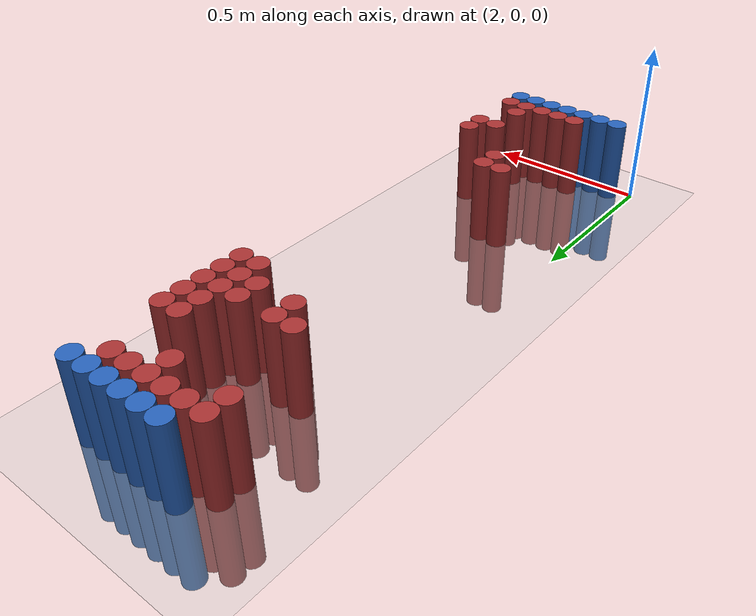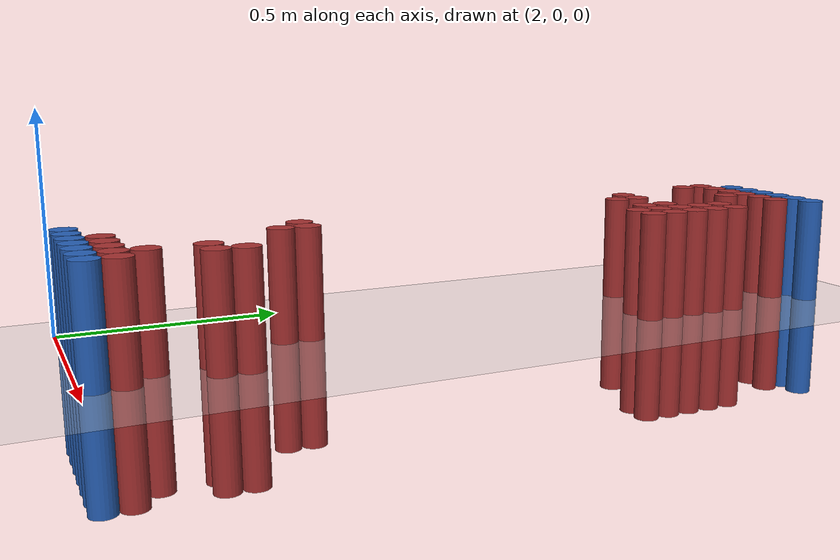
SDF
<sdf version="1.6">
 <world name="default">
  <model name="ground_plane">
   <static>1</static>
   <link name="link">
    <collision name="collision">
     <geometry><plane><normal>0 0 1</normal><size>100 100</size></plane></geometry>
     <surface><friction><ode><mu>100</mu><mu2>50</mu2></ode></friction></surface>
    </collision>
    <visual name="visual">
     <cast_shadows>0</cast_shadows>
     <geometry><plane><normal>0 0 1</normal><size>100 100</size></plane></geometry>
     <material>
      <script><uri>file://media/materials/scripts/gazebo.material</uri><name>Gazebo/Grey</name></script>
     </material>
    </visual>
   </link>
  </model>
  <model name="unit_cylinder_96">
   <static>1</static>
   <pose>2.130000 1.770000 0.000000 0.000000 0.000000 0.000000</pose>
   <link name="link">
    <inertial>
     <mass>1</mass>
     <inertia><ixx>0.145833</ixx><ixy>0</ixy><ixz>0</ixz><iyy>0.145833</iyy><iyz>0</iyz><izz>0.125</izz></inertia>
    </inertial>
    <collision name="collision">
     <geometry><cylinder><radius>0.030000</radius><length>0.5</length></cylinder></geometry>
    </collision>
    <visual name="visual">
     <geometry><cylinder><radius>0.030000</radius><length>0.5</length></cylinder></geometry>
     <material>
      <ambient>0.152000 0.379000 0.720000 1</ambient>
      <diffuse>0.152000 0.379000 0.720000 1</diffuse>
     </material>
     <material>
      <script><name>Gazebo/Grey</name><uri>file://media/materials/scripts/gazebo.material</uri></script>
     </material>
    </visual>
   </link>
  </model>
  <model name="unit_cylinder_97">
   <static>1</static>
   <pose>2.190000 1.770000 0.000000 0.000000 0.000000 0.000000</pose>
   <link name="link">
    <inertial>
     <mass>1</mass>
     <inertia><ixx>0.145833</ixx><ixy>0</ixy><ixz>0</ixz><iyy>0.145833</iyy><iyz>0</iyz><izz>0.125</izz></inertia>
    </inertial>
    <collision name="collision">
     <geometry><cylinder><radius>0.030000</radius><length>0.5</length></cylinder></geometry>
    </collision>
    <visual name="visual">
     <geometry><cylinder><radius>0.030000</radius><length>0.5</length></cylinder></geometry>
     <material>
      <ambient>0.152000 0.379000 0.720000 1</ambient>
      <diffuse>0.152000 0.379000 0.720000 1</diffuse>
     </material>
     <material>
      <script><name>Gazebo/Grey</name><uri>file://media/materials/scripts/gazebo.material</uri></script>
     </material>
    </visual>
   </link>
  </model>
  <model name="unit_cylinder_98">
   <static>1</static>
   <pose>2.250000 1.770000 0.000000 0.000000 0.000000 0.000000</pose>
   <link name="link">
    <inertial>
     <mass>1</mass>
     <inertia><ixx>0.145833</ixx><ixy>0</ixy><ixz>0</ixz><iyy>0.145833</iyy><iyz>0</iyz><izz>0.125</izz></inertia>
    </inertial>
    <collision name="collision">
     <geometry><cylinder><radius>0.030000</radius><length>0.5</length></cylinder></geometry>
    </collision>
    <visual name="visual">
     <geometry><cylinder><radius>0.030000</radius><length>0.5</length></cylinder></geometry>
     <material>
      <ambient>0.152000 0.379000 0.720000 1</ambient>
      <diffuse>0.152000 0.379000 0.720000 1</diffuse>
     </material>
     <material>
      <script><name>Gazebo/Grey</name><uri>file://media/materials/scripts/gazebo.material</uri></script>
     </material>
    </visual>
   </link>
  </model>
  <model name="unit_cylinder_99">
   <static>1</static>
   <pose>2.310000 1.770000 0.000000 0.000000 0.000000 0.000000</pose>
   <link name="link">
    <inertial>
     <mass>1</mass>
     <inertia><ixx>0.145833</ixx><ixy>0</ixy><ixz>0</ixz><iyy>0.145833</iyy><iyz>0</iyz><izz>0.125</izz></inertia>
    </inertial>
    <collision name="collision">
     <geometry><cylinder><radius>0.030000</radius><length>0.5</length></cylinder></geometry>
    </collision>
    <visual name="visual">
     <geometry><cylinder><radius>0.030000</radius><length>0.5</length></cylinder></geometry>
     <material>
      <ambient>0.152000 0.379000 0.720000 1</ambient>
      <diffuse>0.152000 0.379000 0.720000 1</diffuse>
     </material>
     <material>
      <script><name>Gazebo/Grey</name><uri>file://media/materials/scripts/gazebo.material</uri></script>
     </material>
    </visual>
   </link>
  </model>
  <model name="unit_cylinder_100">
   <static>1</static>
   <pose>2.370000 1.770000 0.000000 0.000000 0.000000 0.000000</pose>
   <link name="link">
    <inertial>
     <mass>1</mass>
     <inertia><ixx>0.145833</ixx><ixy>0</ixy><ixz>0</ixz><iyy>0.145833</iyy><iyz>0</iyz><izz>0.125</izz></inertia>
    </inertial>
    <collision name="collision">
     <geometry><cylinder><radius>0.030000</radius><length>0.5</length></cylinder></geometry>
    </collision>
    <visual name="visual">
     <geometry><cylinder><radius>0.030000</radius><length>0.5</length></cylinder></geometry>
     <material>
      <ambient>0.152000 0.379000 0.720000 1</ambient>
      <diffuse>0.152000 0.379000 0.720000 1</diffuse>
     </material>
     <material>
      <script><name>Gazebo/Grey</name><uri>file://media/materials/scripts/gazebo.material</uri></script>
     </material>
    </visual>
   </link>
  </model>
  <model name="unit_cylinder_101">
   <static>1</static>
   <pose>2.430000 1.770000 0.000000 0.000000 0.000000 0.000000</pose>
   <link name="link">
    <inertial>
     <mass>1</mass>
     <inertia><ixx>0.145833</ixx><ixy>0</ixy><ixz>0</ixz><iyy>0.145833</iyy><iyz>0</iyz><izz>0.125</izz></inertia>
    </inertial>
    <collision name="collision">
     <geometry><cylinder><radius>0.030000</radius><length>0.5</length></cylinder></geometry>
    </collision>
    <visual name="visual">
     <geometry><cylinder><radius>0.030000</radius><length>0.5</length></cylinder></geometry>
     <material>
      <ambient>0.152000 0.379000 0.720000 1</ambient>
      <diffuse>0.152000 0.379000 0.720000 1</diffuse>
     </material>
     <material>
      <script><name>Gazebo/Grey</name><uri>file://media/materials/scripts/gazebo.material</uri></script>
     </material>
    </visual>
   </link>
  </model>
  <model name="unit_cylinder_125">
   <static>1</static>
   <pose>2.070000 1.710000 0.000000 0.000000 0.000000 0.000000</pose>
   <link name="link">
    <inertial>
     <mass>1</mass>
     <inertia><ixx>0.145833</ixx><ixy>0</ixy><ixz>0</ixz><iyy>0.145833</iyy><iyz>0</iyz><izz>0.125</izz></inertia>
    </inertial>
    <collision name="collision">
     <geometry><cylinder><radius>0.030000</radius><length>0.5</length></cylinder></geometry>
    </collision>
    <visual name="visual">
     <geometry><cylinder><radius>0.030000</radius><length>0.5</length></cylinder></geometry>
     <material>
      <ambient>0.648000 0.192000 0.192000 1</ambient>
      <diffuse>0.648000 0.192000 0.192000 1</diffuse>
     </material>
     <material>
      <script><name>Gazebo/Grey</name><uri>file://media/materials/scripts/gazebo.material</uri></script>
     </material>
    </visual>
   </link>
  </model>
  <model name="unit_cylinder_126">
   <static>1</static>
   <pose>2.130000 1.710000 0.000000 0.000000 0.000000 0.000000</pose>
   <link name="link">
    <inertial>
     <mass>1</mass>
     <inertia><ixx>0.145833</ixx><ixy>0</ixy><ixz>0</ixz><iyy>0.145833</iyy><iyz>0</iyz><izz>0.125</izz></inertia>
    </inertial>
    <collision name="collision">
     <geometry><cylinder><radius>0.030000</radius><length>0.5</length></cylinder></geometry>
    </collision>
    <visual name="visual">
     <geometry><cylinder><radius>0.030000</radius><length>0.5</length></cylinder></geometry>
     <material>
      <ambient>0.648000 0.192000 0.192000 1</ambient>
      <diffuse>0.648000 0.192000 0.192000 1</diffuse>
     </material>
     <material>
      <script><name>Gazebo/Grey</name><uri>file://media/materials/scripts/gazebo.material</uri></script>
     </material>
    </visual>
   </link>
  </model>
  <model name="unit_cylinder_127">
   <static>1</static>
   <pose>2.190000 1.710000 0.000000 0.000000 0.000000 0.000000</pose>
   <link name="link">
    <inertial>
     <mass>1</mass>
     <inertia><ixx>0.145833</ixx><ixy>0</ixy><ixz>0</ixz><iyy>0.145833</iyy><iyz>0</iyz><izz>0.125</izz></inertia>
    </inertial>
    <collision name="collision">
     <geometry><cylinder><radius>0.030000</radius><length>0.5</length></cylinder></geometry>
    </collision>
    <visual name="visual">
     <geometry><cylinder><radius>0.030000</radius><length>0.5</length></cylinder></geometry>
     <material>
      <ambient>0.648000 0.192000 0.192000 1</ambient>
      <diffuse>0.648000 0.192000 0.192000 1</diffuse>
     </material>
     <material>
      <script><name>Gazebo/Grey</name><uri>file://media/materials/scripts/gazebo.material</uri></script>
     </material>
    </visual>
   </link>
  </model>
  <model name="unit_cylinder_128">
   <static>1</static>
   <pose>2.250000 1.710000 0.000000 0.000000 0.000000 0.000000</pose>
   <link name="link">
    <inertial>
     <mass>1</mass>
     <inertia><ixx>0.145833</ixx><ixy>0</ixy><ixz>0</ixz><iyy>0.145833</iyy><iyz>0</iyz><izz>0.125</izz></inertia>
    </inertial>
    <collision name="collision">
     <geometry><cylinder><radius>0.030000</radius><length>0.5</length></cylinder></geometry>
    </collision>
    <visual name="visual">
     <geometry><cylinder><radius>0.030000</radius><length>0.5</length></cylinder></geometry>
     <material>
      <ambient>0.648000 0.192000 0.192000 1</ambient>
      <diffuse>0.648000 0.192000 0.192000 1</diffuse>
     </material>
     <material>
      <script><name>Gazebo/Grey</name><uri>file://media/materials/scripts/gazebo.material</uri></script>
     </material>
    </visual>
   </link>
  </model>
  <model name="unit_cylinder_129">
   <static>1</static>
   <pose>2.310000 1.710000 0.000000 0.000000 0.000000 0.000000</pose>
   <link name="link">
    <inertial>
     <mass>1</mass>
     <inertia><ixx>0.145833</ixx><ixy>0</ixy><ixz>0</ixz><iyy>0.145833</iyy><iyz>0</iyz><izz>0.125</izz></inertia>
    </inertial>
    <collision name="collision">
     <geometry><cylinder><radius>0.030000</radius><length>0.5</length></cylinder></geometry>
    </collision>
    <visual name="visual">
     <geometry><cylinder><radius>0.030000</radius><length>0.5</length></cylinder></geometry>
     <material>
      <ambient>0.648000 0.192000 0.192000 1</ambient>
      <diffuse>0.648000 0.192000 0.192000 1</diffuse>
     </material>
     <material>
      <script><name>Gazebo/Grey</name><uri>file://media/materials/scripts/gazebo.material</uri></script>
     </material>
    </visual>
   </link>
  </model>
  <model name="unit_cylinder_130">
   <static>1</static>
   <pose>2.370000 1.710000 0.000000 0.000000 0.000000 0.000000</pose>
   <link name="link">
    <inertial>
     <mass>1</mass>
     <inertia><ixx>0.145833</ixx><ixy>0</ixy><ixz>0</ixz><iyy>0.145833</iyy><iyz>0</iyz><izz>0.125</izz></inertia>
    </inertial>
    <collision name="collision">
     <geometry><cylinder><radius>0.030000</radius><length>0.5</length></cylinder></geometry>
    </collision>
    <visual name="visual">
     <geometry><cylinder><radius>0.030000</radius><length>0.5</length></cylinder></geometry>
     <material>
      <ambient>0.648000 0.192000 0.192000 1</ambient>
      <diffuse>0.648000 0.192000 0.192000 1</diffuse>
     </material>
     <material>
      <script><name>Gazebo/Grey</name><uri>file://media/materials/scripts/gazebo.material</uri></script>
     </material>
    </visual>
   </link>
  </model>
  <model name="unit_cylinder_143">
   <static>1</static>
   <pose>2.070000 1.650000 0.000000 0.000000 0.000000 0.000000</pose>
   <link name="link">
    <inertial>
     <mass>1</mass>
     <inertia><ixx>0.145833</ixx><ixy>0</ixy><ixz>0</ixz><iyy>0.145833</iyy><iyz>0</iyz><izz>0.125</izz></inertia>
    </inertial>
    <collision name="collision">
     <geometry><cylinder><radius>0.030000</radius><length>0.5</length></cylinder></geometry>
    </collision>
    <visual name="visual">
     <geometry><cylinder><radius>0.030000</radius><length>0.5</length></cylinder></geometry>
     <material>
      <ambient>0.648000 0.192000 0.192000 1</ambient>
      <diffuse>0.648000 0.192000 0.192000 1</diffuse>
     </material>
     <material>
      <script><name>Gazebo/Grey</name><uri>file://media/materials/scripts/gazebo.material</uri></script>
     </material>
    </visual>
   </link>
  </model>
  <model name="unit_cylinder_144">
   <static>1</static>
   <pose>2.250000 1.650000 0.000000 0.000000 0.000000 0.000000</pose>
   <link name="link">
    <inertial>
     <mass>1</mass>
     <inertia><ixx>0.145833</ixx><ixy>0</ixy><ixz>0</ixz><iyy>0.145833</iyy><iyz>0</iyz><izz>0.125</izz></inertia>
    </inertial>
    <collision name="collision">
     <geometry><cylinder><radius>0.030000</radius><length>0.5</length></cylinder></geometry>
    </collision>
    <visual name="visual">
     <geometry><cylinder><radius>0.030000</radius><length>0.5</length></cylinder></geometry>
     <material>
      <ambient>0.648000 0.192000 0.192000 1</ambient>
      <diffuse>0.648000 0.192000 0.192000 1</diffuse>
     </material>
     <material>
      <script><name>Gazebo/Grey</name><uri>file://media/materials/scripts/gazebo.material</uri></script>
     </material>
    </visual>
   </link>
  </model>
  <model name="unit_cylinder_157">
   <static>1</static>
   <pose>2.370000 1.530000 0.000000 0.000000 0.000000 0.000000</pose>
   <link name="link">
    <inertial>
     <mass>1</mass>
     <inertia><ixx>0.145833</ixx><ixy>0</ixy><ixz>0</ixz><iyy>0.145833</iyy><iyz>0</iyz><izz>0.125</izz></inertia>
    </inertial>
    <collision name="collision">
     <geometry><cylinder><radius>0.030000</radius><length>0.5</length></cylinder></geometry>
    </collision>
    <visual name="visual">
     <geometry><cylinder><radius>0.030000</radius><length>0.5</length></cylinder></geometry>
     <material>
      <ambient>0.648000 0.192000 0.192000 1</ambient>
      <diffuse>0.648000 0.192000 0.192000 1</diffuse>
     </material>
     <material>
      <script><name>Gazebo/Grey</name><uri>file://media/materials/scripts/gazebo.material</uri></script>
     </material>
    </visual>
   </link>
  </model>
  <model name="unit_cylinder_158">
   <static>1</static>
   <pose>2.430000 1.530000 0.000000 0.000000 0.000000 0.000000</pose>
   <link name="link">
    <inertial>
     <mass>1</mass>
     <inertia><ixx>0.145833</ixx><ixy>0</ixy><ixz>0</ixz><iyy>0.145833</iyy><iyz>0</iyz><izz>0.125</izz></inertia>
    </inertial>
    <collision name="collision">
     <geometry><cylinder><radius>0.030000</radius><length>0.5</length></cylinder></geometry>
    </collision>
    <visual name="visual">
     <geometry><cylinder><radius>0.030000</radius><length>0.5</length></cylinder></geometry>
     <material>
      <ambient>0.648000 0.192000 0.192000 1</ambient>
      <diffuse>0.648000 0.192000 0.192000 1</diffuse>
     </material>
     <material>
      <script><name>Gazebo/Grey</name><uri>file://media/materials/scripts/gazebo.material</uri></script>
     </material>
    </visual>
   </link>
  </model>
  <model name="unit_cylinder_166">
   <static>1</static>
   <pose>2.370000 1.470000 0.000000 0.000000 0.000000 0.000000</pose>
   <link name="link">
    <inertial>
     <mass>1</mass>
     <inertia><ixx>0.145833</ixx><ixy>0</ixy><ixz>0</ixz><iyy>0.145833</iyy><iyz>0</iyz><izz>0.125</izz></inertia>
    </inertial>
    <collision name="collision">
     <geometry><cylinder><radius>0.030000</radius><length>0.5</length></cylinder></geometry>
    </collision>
    <visual name="visual">
     <geometry><cylinder><radius>0.030000</radius><length>0.5</length></cylinder></geometry>
     <material>
      <ambient>0.648000 0.192000 0.192000 1</ambient>
      <diffuse>0.648000 0.192000 0.192000 1</diffuse>
     </material>
     <material>
      <script><name>Gazebo/Grey</name><uri>file://media/materials/scripts/gazebo.material</uri></script>
     </material>
    </visual>
   </link>
  </model>
  <model name="unit_cylinder_167">
   <static>1</static>
   <pose>2.430000 1.470000 0.000000 0.000000 0.000000 0.000000</pose>
   <link name="link">
    <inertial>
     <mass>1</mass>
     <inertia><ixx>0.145833</ixx><ixy>0</ixy><ixz>0</ixz><iyy>0.145833</iyy><iyz>0</iyz><izz>0.125</izz></inertia>
    </inertial>
    <collision name="collision">
     <geometry><cylinder><radius>0.030000</radius><length>0.5</length></cylinder></geometry>
    </collision>
    <visual name="visual">
     <geometry><cylinder><radius>0.030000</radius><length>0.5</length></cylinder></geometry>
     <material>
      <ambient>0.648000 0.192000 0.192000 1</ambient>
      <diffuse>0.648000 0.192000 0.192000 1</diffuse>
     </material>
     <material>
      <script><name>Gazebo/Grey</name><uri>file://media/materials/scripts/gazebo.material</uri></script>
     </material>
    </visual>
   </link>
  </model>
  <model name="unit_cylinder_174">
   <static>1</static>
   <pose>2.130000 1.410000 0.000000 0.000000 0.000000 0.000000</pose>
   <link name="link">
    <inertial>
     <mass>1</mass>
     <inertia><ixx>0.145833</ixx><ixy>0</ixy><ixz>0</ixz><iyy>0.145833</iyy><iyz>0</iyz><izz>0.125</izz></inertia>
    </inertial>
    <collision name="collision">
     <geometry><cylinder><radius>0.030000</radius><length>0.5</length></cylinder></geometry>
    </collision>
    <visual name="visual">
     <geometry><cylinder><radius>0.030000</radius><length>0.5</length></cylinder></geometry>
     <material>
      <ambient>0.648000 0.192000 0.192000 1</ambient>
      <diffuse>0.648000 0.192000 0.192000 1</diffuse>
     </material>
     <material>
      <script><name>Gazebo/Grey</name><uri>file://media/materials/scripts/gazebo.material</uri></script>
     </material>
    </visual>
   </link>
  </model>
  <model name="unit_cylinder_175">
   <static>1</static>
   <pose>2.190000 1.410000 0.000000 0.000000 0.000000 0.000000</pose>
   <link name="link">
    <inertial>
     <mass>1</mass>
     <inertia><ixx>0.145833</ixx><ixy>0</ixy><ixz>0</ixz><iyy>0.145833</iyy><iyz>0</iyz><izz>0.125</izz></inertia>
    </inertial>
    <collision name="collision">
     <geometry><cylinder><radius>0.030000</radius><length>0.5</length></cylinder></geometry>
    </collision>
    <visual name="visual">
     <geometry><cylinder><radius>0.030000</radius><length>0.5</length></cylinder></geometry>
     <material>
      <ambient>0.648000 0.192000 0.192000 1</ambient>
      <diffuse>0.648000 0.192000 0.192000 1</diffuse>
     </material>
     <material>
      <script><name>Gazebo/Grey</name><uri>file://media/materials/scripts/gazebo.material</uri></script>
     </material>
    </visual>
   </link>
  </model>
  <model name="unit_cylinder_176">
   <static>1</static>
   <pose>2.310000 1.410000 0.000000 0.000000 0.000000 0.000000</pose>
   <link name="link">
    <inertial>
     <mass>1</mass>
     <inertia><ixx>0.145833</ixx><ixy>0</ixy><ixz>0</ixz><iyy>0.145833</iyy><iyz>0</iyz><izz>0.125</izz></inertia>
    </inertial>
    <collision name="collision">
     <geometry><cylinder><radius>0.030000</radius><length>0.5</length></cylinder></geometry>
    </collision>
    <visual name="visual">
     <geometry><cylinder><radius>0.030000</radius><length>0.5</length></cylinder></geometry>
     <material>
      <ambient>0.648000 0.192000 0.192000 1</ambient>
      <diffuse>0.648000 0.192000 0.192000 1</diffuse>
     </material>
     <material>
      <script><name>Gazebo/Grey</name><uri>file://media/materials/scripts/gazebo.material</uri></script>
     </material>
    </visual>
   </link>
  </model>
  <model name="unit_cylinder_177">
   <static>1</static>
   <pose>2.370000 1.410000 0.000000 0.000000 0.000000 0.000000</pose>
   <link name="link">
    <inertial>
     <mass>1</mass>
     <inertia><ixx>0.145833</ixx><ixy>0</ixy><ixz>0</ixz><iyy>0.145833</iyy><iyz>0</iyz><izz>0.125</izz></inertia>
    </inertial>
    <collision name="collision">
     <geometry><cylinder><radius>0.030000</radius><length>0.5</length></cylinder></geometry>
    </collision>
    <visual name="visual">
     <geometry><cylinder><radius>0.030000</radius><length>0.5</length></cylinder></geometry>
     <material>
      <ambient>0.648000 0.192000 0.192000 1</ambient>
      <diffuse>0.648000 0.192000 0.192000 1</diffuse>
     </material>
     <material>
      <script><name>Gazebo/Grey</name><uri>file://media/materials/scripts/gazebo.material</uri></script>
     </material>
    </visual>
   </link>
  </model>
  <model name="unit_cylinder_178">
   <static>1</static>
   <pose>2.430000 1.410000 0.000000 0.000000 0.000000 0.000000</pose>
   <link name="link">
    <inertial>
     <mass>1</mass>
     <inertia><ixx>0.145833</ixx><ixy>0</ixy><ixz>0</ixz><iyy>0.145833</iyy><iyz>0</iyz><izz>0.125</izz></inertia>
    </inertial>
    <collision name="collision">
     <geometry><cylinder><radius>0.030000</radius><length>0.5</length></cylinder></geometry>
    </collision>
    <visual name="visual">
     <geometry><cylinder><radius>0.030000</radius><length>0.5</length></cylinder></geometry>
     <material>
      <ambient>0.648000 0.192000 0.192000 1</ambient>
      <diffuse>0.648000 0.192000 0.192000 1</diffuse>
     </material>
     <material>
      <script><name>Gazebo/Grey</name><uri>file://media/materials/scripts/gazebo.material</uri></script>
     </material>
    </visual>
   </link>
  </model>
  <model name="unit_cylinder_183">
   <static>1</static>
   <pose>2.190000 1.350000 0.000000 0.000000 0.000000 0.000000</pose>
   <link name="link">
    <inertial>
     <mass>1</mass>
     <inertia><ixx>0.145833</ixx><ixy>0</ixy><ixz>0</ixz><iyy>0.145833</iyy><iyz>0</iyz><izz>0.125</izz></inertia>
    </inertial>
    <collision name="collision">
     <geometry><cylinder><radius>0.030000</radius><length>0.5</length></cylinder></geometry>
    </collision>
    <visual name="visual">
     <geometry><cylinder><radius>0.030000</radius><length>0.5</length></cylinder></geometry>
     <material>
      <ambient>0.648000 0.192000 0.192000 1</ambient>
      <diffuse>0.648000 0.192000 0.192000 1</diffuse>
     </material>
     <material>
      <script><name>Gazebo/Grey</name><uri>file://media/materials/scripts/gazebo.material</uri></script>
     </material>
    </visual>
   </link>
  </model>
  <model name="unit_cylinder_184">
   <static>1</static>
   <pose>2.310000 1.350000 0.000000 0.000000 0.000000 0.000000</pose>
   <link name="link">
    <inertial>
     <mass>1</mass>
     <inertia><ixx>0.145833</ixx><ixy>0</ixy><ixz>0</ixz><iyy>0.145833</iyy><iyz>0</iyz><izz>0.125</izz></inertia>
    </inertial>
    <collision name="collision">
     <geometry><cylinder><radius>0.030000</radius><length>0.5</length></cylinder></geometry>
    </collision>
    <visual name="visual">
     <geometry><cylinder><radius>0.030000</radius><length>0.5</length></cylinder></geometry>
     <material>
      <ambient>0.648000 0.192000 0.192000 1</ambient>
      <diffuse>0.648000 0.192000 0.192000 1</diffuse>
     </material>
     <material>
      <script><name>Gazebo/Grey</name><uri>file://media/materials/scripts/gazebo.material</uri></script>
     </material>
    </visual>
   </link>
  </model>
  <model name="unit_cylinder_185">
   <static>1</static>
   <pose>2.370000 1.350000 0.000000 0.000000 0.000000 0.000000</pose>
   <link name="link">
    <inertial>
     <mass>1</mass>
     <inertia><ixx>0.145833</ixx><ixy>0</ixy><ixz>0</ixz><iyy>0.145833</iyy><iyz>0</iyz><izz>0.125</izz></inertia>
    </inertial>
    <collision name="collision">
     <geometry><cylinder><radius>0.030000</radius><length>0.5</length></cylinder></geometry>
    </collision>
    <visual name="visual">
     <geometry><cylinder><radius>0.030000</radius><length>0.5</length></cylinder></geometry>
     <material>
      <ambient>0.648000 0.192000 0.192000 1</ambient>
      <diffuse>0.648000 0.192000 0.192000 1</diffuse>
     </material>
     <material>
      <script><name>Gazebo/Grey</name><uri>file://media/materials/scripts/gazebo.material</uri></script>
     </material>
    </visual>
   </link>
  </model>
  <model name="unit_cylinder_186">
   <static>1</static>
   <pose>2.430000 1.350000 0.000000 0.000000 0.000000 0.000000</pose>
   <link name="link">
    <inertial>
     <mass>1</mass>
     <inertia><ixx>0.145833</ixx><ixy>0</ixy><ixz>0</ixz><iyy>0.145833</iyy><iyz>0</iyz><izz>0.125</izz></inertia>
    </inertial>
    <collision name="collision">
     <geometry><cylinder><radius>0.030000</radius><length>0.5</length></cylinder></geometry>
    </collision>
    <visual name="visual">
     <geometry><cylinder><radius>0.030000</radius><length>0.5</length></cylinder></geometry>
     <material>
      <ambient>0.648000 0.192000 0.192000 1</ambient>
      <diffuse>0.648000 0.192000 0.192000 1</diffuse>
     </material>
     <material>
      <script><name>Gazebo/Grey</name><uri>file://media/materials/scripts/gazebo.material</uri></script>
     </material>
    </visual>
   </link>
  </model>
  <model name="unit_cylinder_192">
   <static>1</static>
   <pose>2.370000 1.290000 0.000000 0.000000 0.000000 0.000000</pose>
   <link name="link">
    <inertial>
     <mass>1</mass>
     <inertia><ixx>0.145833</ixx><ixy>0</ixy><ixz>0</ixz><iyy>0.145833</iyy><iyz>0</iyz><izz>0.125</izz></inertia>
    </inertial>
    <collision name="collision">
     <geometry><cylinder><radius>0.030000</radius><length>0.5</length></cylinder></geometry>
    </collision>
    <visual name="visual">
     <geometry><cylinder><radius>0.030000</radius><length>0.5</length></cylinder></geometry>
     <material>
      <ambient>0.648000 0.192000 0.192000 1</ambient>
      <diffuse>0.648000 0.192000 0.192000 1</diffuse>
     </material>
     <material>
      <script><name>Gazebo/Grey</name><uri>file://media/materials/scripts/gazebo.material</uri></script>
     </material>
    </visual>
   </link>
  </model>
  <model name="unit_cylinder_193">
   <static>1</static>
   <pose>2.430000 1.290000 0.000000 0.000000 0.000000 0.000000</pose>
   <link name="link">
    <inertial>
     <mass>1</mass>
     <inertia><ixx>0.145833</ixx><ixy>0</ixy><ixz>0</ixz><iyy>0.145833</iyy><iyz>0</iyz><izz>0.125</izz></inertia>
    </inertial>
    <collision name="collision">
     <geometry><cylinder><radius>0.030000</radius><length>0.5</length></cylinder></geometry>
    </collision>
    <visual name="visual">
     <geometry><cylinder><radius>0.030000</radius><length>0.5</length></cylinder></geometry>
     <material>
      <ambient>0.648000 0.192000 0.192000 1</ambient>
      <diffuse>0.648000 0.192000 0.192000 1</diffuse>
     </material>
     <material>
      <script><name>Gazebo/Grey</name><uri>file://media/materials/scripts/gazebo.material</uri></script>
     </material>
    </visual>
   </link>
  </model>
  <model name="unit_cylinder_240">
   <static>1</static>
   <pose>2.190000 0.510000 0.000000 0.000000 0.000000 0.000000</pose>
   <link name="link">
    <inertial>
     <mass>1</mass>
     <inertia><ixx>0.145833</ixx><ixy>0</ixy><ixz>0</ixz><iyy>0.145833</iyy><iyz>0</iyz><izz>0.125</izz></inertia>
    </inertial>
    <collision name="collision">
     <geometry><cylinder><radius>0.030000</radius><length>0.5</length></cylinder></geometry>
    </collision>
    <visual name="visual">
     <geometry><cylinder><radius>0.030000</radius><length>0.5</length></cylinder></geometry>
     <material>
      <ambient>0.648000 0.192000 0.192000 1</ambient>
      <diffuse>0.648000 0.192000 0.192000 1</diffuse>
     </material>
     <material>
      <script><name>Gazebo/Grey</name><uri>file://media/materials/scripts/gazebo.material</uri></script>
     </material>
    </visual>
   </link>
  </model>
  <model name="unit_cylinder_241">
   <static>1</static>
   <pose>2.250000 0.510000 0.000000 0.000000 0.000000 0.000000</pose>
   <link name="link">
    <inertial>
     <mass>1</mass>
     <inertia><ixx>0.145833</ixx><ixy>0</ixy><ixz>0</ixz><iyy>0.145833</iyy><iyz>0</iyz><izz>0.125</izz></inertia>
    </inertial>
    <collision name="collision">
     <geometry><cylinder><radius>0.030000</radius><length>0.5</length></cylinder></geometry>
    </collision>
    <visual name="visual">
     <geometry><cylinder><radius>0.030000</radius><length>0.5</length></cylinder></geometry>
     <material>
      <ambient>0.648000 0.192000 0.192000 1</ambient>
      <diffuse>0.648000 0.192000 0.192000 1</diffuse>
     </material>
     <material>
      <script><name>Gazebo/Grey</name><uri>file://media/materials/scripts/gazebo.material</uri></script>
     </material>
    </visual>
   </link>
  </model>
  <model name="unit_cylinder_250">
   <static>1</static>
   <pose>2.250000 0.450000 0.000000 0.000000 0.000000 0.000000</pose>
   <link name="link">
    <inertial>
     <mass>1</mass>
     <inertia><ixx>0.145833</ixx><ixy>0</ixy><ixz>0</ixz><iyy>0.145833</iyy><iyz>0</iyz><izz>0.125</izz></inertia>
    </inertial>
    <collision name="collision">
     <geometry><cylinder><radius>0.030000</radius><length>0.5</length></cylinder></geometry>
    </collision>
    <visual name="visual">
     <geometry><cylinder><radius>0.030000</radius><length>0.5</length></cylinder></geometry>
     <material>
      <ambient>0.648000 0.192000 0.192000 1</ambient>
      <diffuse>0.648000 0.192000 0.192000 1</diffuse>
     </material>
     <material>
      <script><name>Gazebo/Grey</name><uri>file://media/materials/scripts/gazebo.material</uri></script>
     </material>
    </visual>
   </link>
  </model>
  <model name="unit_cylinder_264">
   <static>1</static>
   <pose>2.430000 0.330000 0.000000 0.000000 0.000000 0.000000</pose>
   <link name="link">
    <inertial>
     <mass>1</mass>
     <inertia><ixx>0.145833</ixx><ixy>0</ixy><ixz>0</ixz><iyy>0.145833</iyy><iyz>0</iyz><izz>0.125</izz></inertia>
    </inertial>
    <collision name="collision">
     <geometry><cylinder><radius>0.030000</radius><length>0.5</length></cylinder></geometry>
    </collision>
    <visual name="visual">
     <geometry><cylinder><radius>0.030000</radius><length>0.5</length></cylinder></geometry>
     <material>
      <ambient>0.648000 0.192000 0.192000 1</ambient>
      <diffuse>0.648000 0.192000 0.192000 1</diffuse>
     </material>
     <material>
      <script><name>Gazebo/Grey</name><uri>file://media/materials/scripts/gazebo.material</uri></script>
     </material>
    </visual>
   </link>
  </model>
  <model name="unit_cylinder_272">
   <static>1</static>
   <pose>2.370000 0.270000 0.000000 0.000000 0.000000 0.000000</pose>
   <link name="link">
    <inertial>
     <mass>1</mass>
     <inertia><ixx>0.145833</ixx><ixy>0</ixy><ixz>0</ixz><iyy>0.145833</iyy><iyz>0</iyz><izz>0.125</izz></inertia>
    </inertial>
    <collision name="collision">
     <geometry><cylinder><radius>0.030000</radius><length>0.5</length></cylinder></geometry>
    </collision>
    <visual name="visual">
     <geometry><cylinder><radius>0.030000</radius><length>0.5</length></cylinder></geometry>
     <material>
      <ambient>0.648000 0.192000 0.192000 1</ambient>
      <diffuse>0.648000 0.192000 0.192000 1</diffuse>
     </material>
     <material>
      <script><name>Gazebo/Grey</name><uri>file://media/materials/scripts/gazebo.material</uri></script>
     </material>
    </visual>
   </link>
  </model>
  <model name="unit_cylinder_273">
   <static>1</static>
   <pose>2.430000 0.270000 0.000000 0.000000 0.000000 0.000000</pose>
   <link name="link">
    <inertial>
     <mass>1</mass>
     <inertia><ixx>0.145833</ixx><ixy>0</ixy><ixz>0</ixz><iyy>0.145833</iyy><iyz>0</iyz><izz>0.125</izz></inertia>
    </inertial>
    <collision name="collision">
     <geometry><cylinder><radius>0.030000</radius><length>0.5</length></cylinder></geometry>
    </collision>
    <visual name="visual">
     <geometry><cylinder><radius>0.030000</radius><length>0.5</length></cylinder></geometry>
     <material>
      <ambient>0.648000 0.192000 0.192000 1</ambient>
      <diffuse>0.648000 0.192000 0.192000 1</diffuse>
     </material>
     <material>
      <script><name>Gazebo/Grey</name><uri>file://media/materials/scripts/gazebo.material</uri></script>
     </material>
    </visual>
   </link>
  </model>
  <model name="unit_cylinder_279">
   <static>1</static>
   <pose>2.370000 0.150000 0.000000 0.000000 0.000000 0.000000</pose>
   <link name="link">
    <inertial>
     <mass>1</mass>
     <inertia><ixx>0.145833</ixx><ixy>0</ixy><ixz>0</ixz><iyy>0.145833</iyy><iyz>0</iyz><izz>0.125</izz></inertia>
    </inertial>
    <collision name="collision">
     <geometry><cylinder><radius>0.030000</radius><length>0.5</length></cylinder></geometry>
    </collision>
    <visual name="visual">
     <geometry><cylinder><radius>0.030000</radius><length>0.5</length></cylinder></geometry>
     <material>
      <ambient>0.648000 0.192000 0.192000 1</ambient>
      <diffuse>0.648000 0.192000 0.192000 1</diffuse>
     </material>
     <material>
      <script><name>Gazebo/Grey</name><uri>file://media/materials/scripts/gazebo.material</uri></script>
     </material>
    </visual>
   </link>
  </model>
  <model name="unit_cylinder_286">
   <static>1</static>
   <pose>2.190000 0.090000 0.000000 0.000000 0.000000 0.000000</pose>
   <link name="link">
    <inertial>
     <mass>1</mass>
     <inertia><ixx>0.145833</ixx><ixy>0</ixy><ixz>0</ixz><iyy>0.145833</iyy><iyz>0</iyz><izz>0.125</izz></inertia>
    </inertial>
    <collision name="collision">
     <geometry><cylinder><radius>0.030000</radius><length>0.5</length></cylinder></geometry>
    </collision>
    <visual name="visual">
     <geometry><cylinder><radius>0.030000</radius><length>0.5</length></cylinder></geometry>
     <material>
      <ambient>0.648000 0.192000 0.192000 1</ambient>
      <diffuse>0.648000 0.192000 0.192000 1</diffuse>
     </material>
     <material>
      <script><name>Gazebo/Grey</name><uri>file://media/materials/scripts/gazebo.material</uri></script>
     </material>
    </visual>
   </link>
  </model>
  <model name="unit_cylinder_287">
   <static>1</static>
   <pose>2.250000 0.090000 0.000000 0.000000 0.000000 0.000000</pose>
   <link name="link">
    <inertial>
     <mass>1</mass>
     <inertia><ixx>0.145833</ixx><ixy>0</ixy><ixz>0</ixz><iyy>0.145833</iyy><iyz>0</iyz><izz>0.125</izz></inertia>
    </inertial>
    <collision name="collision">
     <geometry><cylinder><radius>0.030000</radius><length>0.5</length></cylinder></geometry>
    </collision>
    <visual name="visual">
     <geometry><cylinder><radius>0.030000</radius><length>0.5</length></cylinder></geometry>
     <material>
      <ambient>0.648000 0.192000 0.192000 1</ambient>
      <diffuse>0.648000 0.192000 0.192000 1</diffuse>
     </material>
     <material>
      <script><name>Gazebo/Grey</name><uri>file://media/materials/scripts/gazebo.material</uri></script>
     </material>
    </visual>
   </link>
  </model>
  <model name="unit_cylinder_288">
   <static>1</static>
   <pose>2.310000 0.090000 0.000000 0.000000 0.000000 0.000000</pose>
   <link name="link">
    <inertial>
     <mass>1</mass>
     <inertia><ixx>0.145833</ixx><ixy>0</ixy><ixz>0</ixz><iyy>0.145833</iyy><iyz>0</iyz><izz>0.125</izz></inertia>
    </inertial>
    <collision name="collision">
     <geometry><cylinder><radius>0.030000</radius><length>0.5</length></cylinder></geometry>
    </collision>
    <visual name="visual">
     <geometry><cylinder><radius>0.030000</radius><length>0.5</length></cylinder></geometry>
     <material>
      <ambient>0.648000 0.192000 0.192000 1</ambient>
      <diffuse>0.648000 0.192000 0.192000 1</diffuse>
     </material>
     <material>
      <script><name>Gazebo/Grey</name><uri>file://media/materials/scripts/gazebo.material</uri></script>
     </material>
    </visual>
   </link>
  </model>
  <model name="unit_cylinder_289">
   <static>1</static>
   <pose>2.370000 0.090000 0.000000 0.000000 0.000000 0.000000</pose>
   <link name="link">
    <inertial>
     <mass>1</mass>
     <inertia><ixx>0.145833</ixx><ixy>0</ixy><ixz>0</ixz><iyy>0.145833</iyy><iyz>0</iyz><izz>0.125</izz></inertia>
    </inertial>
    <collision name="collision">
     <geometry><cylinder><radius>0.030000</radius><length>0.5</length></cylinder></geometry>
    </collision>
    <visual name="visual">
     <geometry><cylinder><radius>0.030000</radius><length>0.5</length></cylinder></geometry>
     <material>
      <ambient>0.648000 0.192000 0.192000 1</ambient>
      <diffuse>0.648000 0.192000 0.192000 1</diffuse>
     </material>
     <material>
      <script><name>Gazebo/Grey</name><uri>file://media/materials/scripts/gazebo.material</uri></script>
     </material>
    </visual>
   </link>
  </model>
  <model name="unit_cylinder_290">
   <static>1</static>
   <pose>2.430000 0.090000 0.000000 0.000000 0.000000 0.000000</pose>
   <link name="link">
    <inertial>
     <mass>1</mass>
     <inertia><ixx>0.145833</ixx><ixy>0</ixy><ixz>0</ixz><iyy>0.145833</iyy><iyz>0</iyz><izz>0.125</izz></inertia>
    </inertial>
    <collision name="collision">
     <geometry><cylinder><radius>0.030000</radius><length>0.5</length></cylinder></geometry>
    </collision>
    <visual name="visual">
     <geometry><cylinder><radius>0.030000</radius><length>0.5</length></cylinder></geometry>
     <material>
      <ambient>0.648000 0.192000 0.192000 1</ambient>
      <diffuse>0.648000 0.192000 0.192000 1</diffuse>
     </material>
     <material>
      <script><name>Gazebo/Grey</name><uri>file://media/materials/scripts/gazebo.material</uri></script>
     </material>
    </visual>
   </link>
  </model>
  <model name="unit_cylinder_307">
   <static>1</static>
   <pose>2.070000 0.030000 0.000000 0.000000 0.000000 0.000000</pose>
   <link name="link">
    <inertial>
     <mass>1</mass>
     <inertia><ixx>0.145833</ixx><ixy>0</ixy><ixz>0</ixz><iyy>0.145833</iyy><iyz>0</iyz><izz>0.125</izz></inertia>
    </inertial>
    <collision name="collision">
     <geometry><cylinder><radius>0.030000</radius><length>0.5</length></cylinder></geometry>
    </collision>
    <visual name="visual">
     <geometry><cylinder><radius>0.030000</radius><length>0.5</length></cylinder></geometry>
     <material>
      <ambient>0.152000 0.379000 0.720000 1</ambient>
      <diffuse>0.152000 0.379000 0.720000 1</diffuse>
     </material>
     <material>
      <script><name>Gazebo/Grey</name><uri>file://media/materials/scripts/gazebo.material</uri></script>
     </material>
    </visual>
   </link>
  </model>
  <model name="unit_cylinder_308">
   <static>1</static>
   <pose>2.130000 0.030000 0.000000 0.000000 0.000000 0.000000</pose>
   <link name="link">
    <inertial>
     <mass>1</mass>
     <inertia><ixx>0.145833</ixx><ixy>0</ixy><ixz>0</ixz><iyy>0.145833</iyy><iyz>0</iyz><izz>0.125</izz></inertia>
    </inertial>
    <collision name="collision">
     <geometry><cylinder><radius>0.030000</radius><length>0.5</length></cylinder></geometry>
    </collision>
    <visual name="visual">
     <geometry><cylinder><radius>0.030000</radius><length>0.5</length></cylinder></geometry>
     <material>
      <ambient>0.152000 0.379000 0.720000 1</ambient>
      <diffuse>0.152000 0.379000 0.720000 1</diffuse>
     </material>
     <material>
      <script><name>Gazebo/Grey</name><uri>file://media/materials/scripts/gazebo.material</uri></script>
     </material>
    </visual>
   </link>
  </model>
  <model name="unit_cylinder_309">
   <static>1</static>
   <pose>2.190000 0.030000 0.000000 0.000000 0.000000 0.000000</pose>
   <link name="link">
    <inertial>
     <mass>1</mass>
     <inertia><ixx>0.145833</ixx><ixy>0</ixy><ixz>0</ixz><iyy>0.145833</iyy><iyz>0</iyz><izz>0.125</izz></inertia>
    </inertial>
    <collision name="collision">
     <geometry><cylinder><radius>0.030000</radius><length>0.5</length></cylinder></geometry>
    </collision>
    <visual name="visual">
     <geometry><cylinder><radius>0.030000</radius><length>0.5</length></cylinder></geometry>
     <material>
      <ambient>0.152000 0.379000 0.720000 1</ambient>
      <diffuse>0.152000 0.379000 0.720000 1</diffuse>
     </material>
     <material>
      <script><name>Gazebo/Grey</name><uri>file://media/materials/scripts/gazebo.material</uri></script>
     </material>
    </visual>
   </link>
  </model>
  <model name="unit_cylinder_310">
   <static>1</static>
   <pose>2.250000 0.030000 0.000000 0.000000 0.000000 0.000000</pose>
   <link name="link">
    <inertial>
     <mass>1</mass>
     <inertia><ixx>0.145833</ixx><ixy>0</ixy><ixz>0</ixz><iyy>0.145833</iyy><iyz>0</iyz><izz>0.125</izz></inertia>
    </inertial>
    <collision name="collision">
     <geometry><cylinder><radius>0.030000</radius><length>0.5</length></cylinder></geometry>
    </collision>
    <visual name="visual">
     <geometry><cylinder><radius>0.030000</radius><length>0.5</length></cylinder></geometry>
     <material>
      <ambient>0.152000 0.379000 0.720000 1</ambient>
      <diffuse>0.152000 0.379000 0.720000 1</diffuse>
     </material>
     <material>
      <script><name>Gazebo/Grey</name><uri>file://media/materials/scripts/gazebo.material</uri></script>
     </material>
    </visual>
   </link>
  </model>
  <model name="unit_cylinder_311">
   <static>1</static>
   <pose>2.310000 0.030000 0.000000 0.000000 0.000000 0.000000</pose>
   <link name="link">
    <inertial>
     <mass>1</mass>
     <inertia><ixx>0.145833</ixx><ixy>0</ixy><ixz>0</ixz><iyy>0.145833</iyy><iyz>0</iyz><izz>0.125</izz></inertia>
    </inertial>
    <collision name="collision">
     <geometry><cylinder><radius>0.030000</radius><length>0.5</length></cylinder></geometry>
    </collision>
    <visual name="visual">
     <geometry><cylinder><radius>0.030000</radius><length>0.5</length></cylinder></geometry>
     <material>
      <ambient>0.152000 0.379000 0.720000 1</ambient>
      <diffuse>0.152000 0.379000 0.720000 1</diffuse>
     </material>
     <material>
      <script><name>Gazebo/Grey</name><uri>file://media/materials/scripts/gazebo.material</uri></script>
     </material>
    </visual>
   </link>
  </model>
  <model name="unit_cylinder_312">
   <static>1</static>
   <pose>2.370000 0.030000 0.000000 0.000000 0.000000 0.000000</pose>
   <link name="link">
    <inertial>
     <mass>1</mass>
     <inertia><ixx>0.145833</ixx><ixy>0</ixy><ixz>0</ixz><iyy>0.145833</iyy><iyz>0</iyz><izz>0.125</izz></inertia>
    </inertial>
    <collision name="collision">
     <geometry><cylinder><radius>0.030000</radius><length>0.5</length></cylinder></geometry>
    </collision>
    <visual name="visual">
     <geometry><cylinder><radius>0.030000</radius><length>0.5</length></cylinder></geometry>
     <material>
      <ambient>0.152000 0.379000 0.720000 1</ambient>
      <diffuse>0.152000 0.379000 0.720000 1</diffuse>
     </material>
     <material>
      <script><name>Gazebo/Grey</name><uri>file://media/materials/scripts/gazebo.material</uri></script>
     </material>
    </visual>
   </link>
  </model>
  <model name="unit_cylinder_313">
   <static>1</static>
   <pose>2.430000 0.030000 0.000000 0.000000 0.000000 0.000000</pose>
   <link name="link">
    <inertial>
     <mass>1</mass>
     <inertia><ixx>0.145833</ixx><ixy>0</ixy><ixz>0</ixz><iyy>0.145833</iyy><iyz>0</iyz><izz>0.125</izz></inertia>
    </inertial>
    <collision name="collision">
     <geometry><cylinder><radius>0.030000</radius><length>0.5</length></cylinder></geometry>
    </collision>
    <visual name="visual">
     <geometry><cylinder><radius>0.030000</radius><length>0.5</length></cylinder></geometry>
     <material>
      <ambient>0.152000 0.379000 0.720000 1</ambient>
      <diffuse>0.152000 0.379000 0.720000 1</diffuse>
     </material>
     <material>
      <script><name>Gazebo/Grey</name><uri>file://media/materials/scripts/gazebo.material</uri></script>
     </material>
    </visual>
   </link>
  </model>
 </world>
</sdf>
